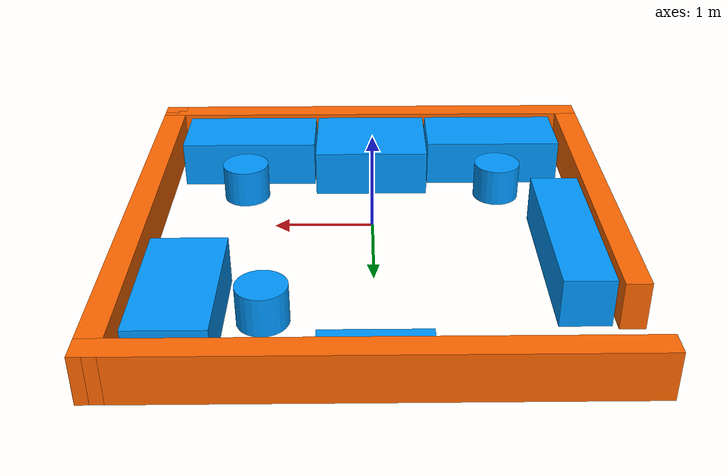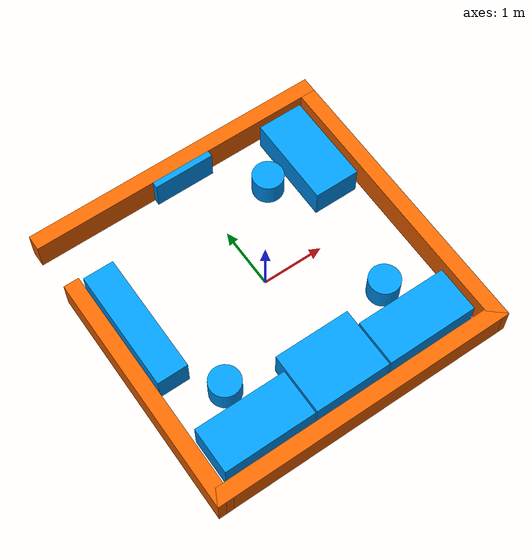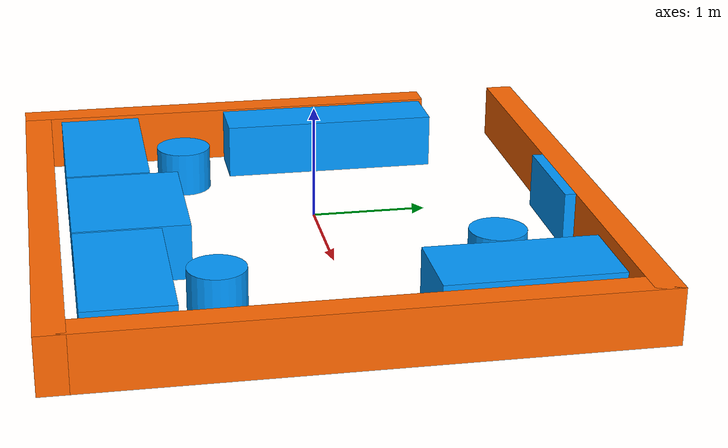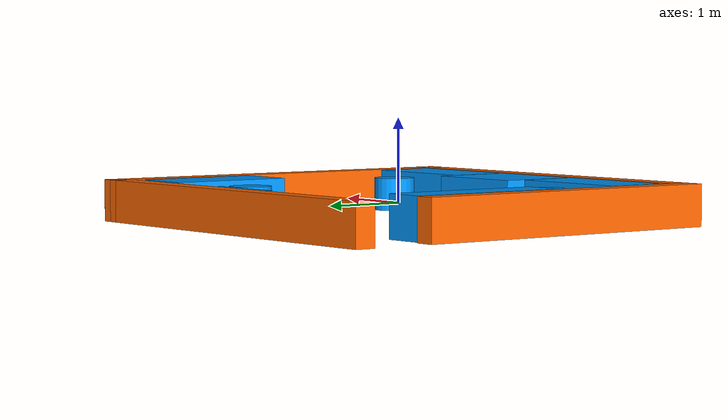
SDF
<!--
@file office.sdf
@author Daniel Onderka (xonder05)
@date 03/2026
-->

<sdf version="1.9">
  <model name="office">

    <!-- Walls -->

    <model name="wall1">
      <static>true</static>
      <pose>0 2.375 0 0 0 0</pose>
      <link name="link">
        <visual name="visual">
          <geometry><box><size>5 0.25 0.5</size></box></geometry>
          <material><diffuse>1.0 0.4 0 1</diffuse></material>
        </visual>
        <collision name="collision">
          <geometry><box><size>5 0.25 0.5</size></box></geometry>
        </collision>
      </link>
    </model>

    <model name="wall2">
      <static>true</static>
      <pose>0 -2.375 0 0 0 0</pose>
      <link name="link">
        <visual name="visual">
          <geometry><box><size>5 0.25 0.5</size></box></geometry>
          <material><diffuse>1.0 0.4 0 1</diffuse></material>
        </visual>
        <collision name="collision">
          <geometry><box><size>5 0.25 0.5</size></box></geometry>
        </collision>
      </link>
    </model>

    <model name="wall3">
      <static>true</static>
      <pose>2.375 0 0 0 0 1.5707</pose>
      <link name="link">
        <visual name="visual">
          <geometry><box><size>5 0.25 0.5</size></box></geometry>
          <material><diffuse>1.0 0.4 0 1</diffuse></material>
        </visual>
        <collision name="collision">
          <geometry><box><size>5 0.25 0.5</size></box></geometry>
        </collision>
      </link>
    </model>

    <model name="wall4">
      <static>true</static>
      <pose>-2.375 -0.5 0 0 0 1.5707</pose>
      <link name="link">
        <visual name="visual">
          <geometry><box><size>4 0.25 0.5</size></box></geometry>
          <material><diffuse>1.0 0.4 0 1</diffuse></material>
        </visual>
        <collision name="collision">
          <geometry><box><size>4 0.25 0.5</size></box></geometry>
        </collision>
      </link>
    </model>

    <!-- Furniture -->

    <model name="table1">
      <static>true</static>
      <pose>1.4 -1.775 0 0 0 0</pose>
      <link name="link">
        <visual name="visual">
          <geometry><box><size>1.5 0.75 0.5</size></box></geometry>
          <material><diffuse>0 0.6 1.0 1</diffuse></material>
        </visual>
        <collision name="collision">
          <geometry><box><size>1.5 0.75 0.5</size></box></geometry>
        </collision>
      </link>
    </model>

    <model name="chair1">
      <static>true</static>
      <pose>1.4 -1.025 0 0 0 0</pose>
      <link name="link">
        <visual name="visual">
          <geometry><cylinder>
            <radius>0.25</radius>
            <length>0.4</length>
          </cylinder></geometry>
          <material><diffuse>0 0.6 1.0 1</diffuse></material>
        </visual>
        <collision name="collision">
          <geometry><box><size>0.5 0.5 0.5</size></box></geometry>
        </collision>
      </link>
    </model>

    <model name="table1.5">
      <static>true</static>
      <pose>0 -1.65 0 0 0 0</pose>
      <link name="link">
        <visual name="visual">
          <geometry><box><size>1.25 1 0.5</size></box></geometry>
          <material><diffuse>0 0.6 1.0 1</diffuse></material>
        </visual>
        <collision name="collision">
          <geometry><box><size>1.25 1 0.5</size></box></geometry>
        </collision>
      </link>
    </model>

    <model name="table2">
      <static>true</static>
      <pose>-1.4 -1.775 0 0 0 0</pose>
      <link name="link">
        <visual name="visual">
          <geometry><box><size>1.5 0.75 0.5</size></box></geometry>
          <material><diffuse>0 0.6 1.0 1</diffuse></material>
        </visual>
        <collision name="collision">
          <geometry><box><size>1.5 0.75 0.5</size></box></geometry>
        </collision>
      </link>
    </model>

    <model name="chair2">
      <static>true</static>
      <pose>-1.4 -1.025 0 0 0 0</pose>
      <link name="link">
        <visual name="visual">
          <geometry><cylinder>
            <radius>0.25</radius>
            <length>0.4</length>
          </cylinder></geometry>
          <material><diffuse>0 0.6 1.0 1</diffuse></material>
        </visual>
        <collision name="collision">
          <geometry><box><size>0.5 0.5 0.5</size></box></geometry>
        </collision>
      </link>
    </model>

    <model name="table3">
      <static>true</static>
      <pose>1.775 1.4 0 0 0 1.5707</pose>
      <link name="link">
        <visual name="visual">
          <geometry><box><size>1.5 0.75 0.5</size></box></geometry>
          <material><diffuse>0 0.6 1.0 1</diffuse></material>
        </visual>
        <collision name="collision">
          <geometry><box><size>1.5 0.75 0.5</size></box></geometry>
        </collision>
      </link>
    </model>

    <model name="chair3">
      <static>true</static>
      <pose>1.025 1.4 0 0 0 0</pose>
      <link name="link">
        <visual name="visual">
          <geometry><cylinder>
            <radius>0.25</radius>
            <length>0.4</length>
          </cylinder></geometry>
          <material><diffuse>0 0.6 1.0 1</diffuse></material>
        </visual>
        <collision name="collision">
          <geometry><box><size>0.5 0.5 0.5</size></box></geometry>
        </collision>
      </link>
    </model>

    <model name="coat_hanger">
      <static>true</static>
      <pose>0 2.2 0 0 0 0</pose>
      <link name="link">
        <visual name="visual">
          <geometry><box><size>1 0.1 0.5</size></box></geometry>
          <material><diffuse>0 0.6 1.0 1</diffuse></material>
        </visual>
        <collision name="collision">
          <geometry><box><size>1 0.1 0.5</size></box></geometry>
        </collision>
      </link>
    </model>

    <model name="storage_thing">
      <static>true</static>
      <pose>-1.95 0.45 0 0 0 1.5707</pose>
      <link name="link">
        <visual name="visual">
          <geometry><box><size>2 0.5 0.5</size></box></geometry>
          <material><diffuse>0 0.6 1.0 1</diffuse></material>
        </visual>
        <collision name="collision">
          <geometry><box><size>2 0.5 0.5</size></box></geometry>
        </collision>
      </link>
    </model>

  </model>
</sdf>
